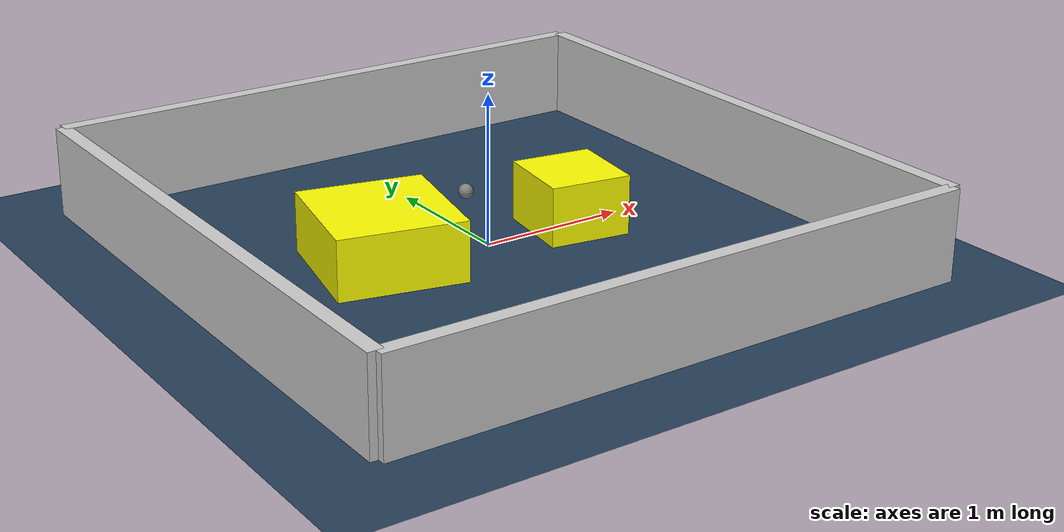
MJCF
<?xml version="1.0" ?>
<mujoco model="generated_environment">
  <option timestep="0.01" integrator="RK4" cone="elliptic"/>
  <default>
    <geom density="1"/>
  </default>
  <asset>
    <texture builtin="gradient" height="3072" rgb1="0.3 0.5 0.7" rgb2="0 0 0" type="skybox" width="512"/>
    <texture builtin="checker" height="300" mark="edge" markrgb="0.8 0.8 0.8" name="groundplane" rgb1="0.2 0.3 0.4" rgb2="0.1 0.2 0.3" type="2d" width="300"/>
    <material name="groundplane" reflectance="0.2" texrepeat="5 5" texture="groundplane" texuniform="true"/>
    <material name="robot" rgba="0.0 1.0 0.0 1"/>
  </asset>
  <worldbody>
    <light dir="0 0 -1" directional="true" pos="0 0 1.5"/>
    <geom condim="4" friction="1.0 0.005 0.001" material="groundplane" name="floor" size="0 0 0.05" type="plane"/>
    <body name="walls">
      <geom name="wall_1" condim="4" pos="-2.0 0.0 0.3" rgba="0.800000011920929 0.800000011920929 0.800000011920929 1.0" size="0.05 2.0 0.3" type="box"/>
      <geom name="wall_2" condim="4" pos="2.0 0.0 0.3" rgba="0.800000011920929 0.800000011920929 0.800000011920929 1.0" size="0.05 2.0 0.3" type="box"/>
      <geom name="wall_3" condim="4" pos="0.0 -2.0 0.3" rgba="0.800000011920929 0.800000011920929 0.800000011920929 1.0" size="2.0 0.05 0.3" type="box"/>
      <geom name="wall_4" condim="4" pos="0.0 2.0 0.3" rgba="0.800000011920929 0.800000011920929 0.800000011920929 1.0" size="2.0 0.05 0.3" type="box"/>
    </body>
    <body name="robot">
      <joint name="joint_x" type="slide" pos="0 0 0" axis="1 0 0"/>
      <joint name="joint_y" type="slide" pos="0 0 0" axis="0 1 0"/>
      <geom name="robot" type="sphere" pos="0.11617199793753841 0.43777662673416806 0.2" size="0.05" mass="5." friction="1.0 0.005 0.0001" condim="4"/>
      <site name="sensor_ball"/>
    </body>
    <body name="obstacle_1_movable">
      <geom name="obstacle_1_movable" condim="4" pos="-0.7429465373958652 0.07519319759593146 0.2" euler="0 0 77.91038358953531" friction="1.0 0.005 0.001" rgba="1 1 0 1" size="0.4308277578743624 0.41998637845450515 0.2" type="box" mass="0.1"/>
      <joint type="free"/>
    </body>
    <body name="obstacle_2_movable">
      <geom name="obstacle_2_movable" condim="4" pos="0.6161658634613634 -0.03497701593310443 0.2" euler="0 0 171.9520970191744" friction="1.0 0.005 0.001" rgba="1 1 0 1" size="0.2761842274912137 0.2818356946337231 0.2" type="box" mass="0.1"/>
      <joint type="free"/>
    </body>
  </worldbody>
  <actuator>
    <motor name="actuator_x" joint="joint_x" gear="1" ctrlrange="-1 1"/>
    <motor name="actuator_y" joint="joint_y" gear="1" ctrlrange="-1 1"/>
  </actuator>
</mujoco>
